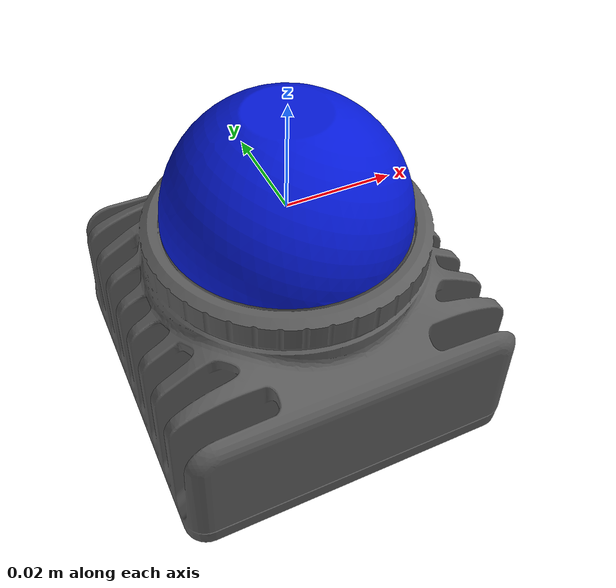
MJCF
<mujoco model="mid360">
  <compiler meshdir="assets" fitaabb="true" />

  <default>
    <default class="mid360">
      <geom type="mesh" group="2" contype="0" conaffinity="0" mass="0" />
    </default>
  </default>

  <asset>
    <material name="mid360_metal" rgba="0.36 0.36 0.36 1" metallic="0.8" />
    <material name="mid360_blue_glass" rgba="0.02 0.10 0.85 0.9" specular="0.9" metallic="1"/>
    <mesh name="mid360_metal_mesh" file="mid360_metal.obj" scale="0.001 0.001 0.001" />
    <mesh name="mid360_blueglass_mesh" file="mid360_blueglass.obj" scale="0.001 0.001 0.001" />
  </asset>

  <worldbody>
    <body name="mid360" childclass="mid360">
      <geom name="mid360_visual_metal" mesh="mid360_metal_mesh" material="mid360_metal" />
      <geom name="mid360_visual_blueglass" mesh="mid360_blueglass_mesh" material="mid360_blue_glass" />
      <site name="lidar_frame" pos="0 0 0" size="0.003 0.003 0.003" rgba="1 0 0 0.35" />
    </body>
  </worldbody>
</mujoco>
